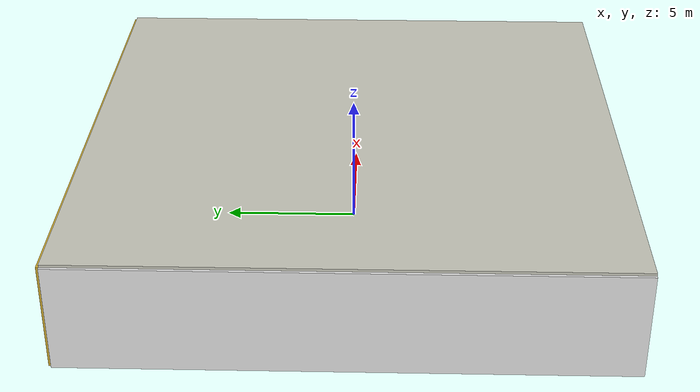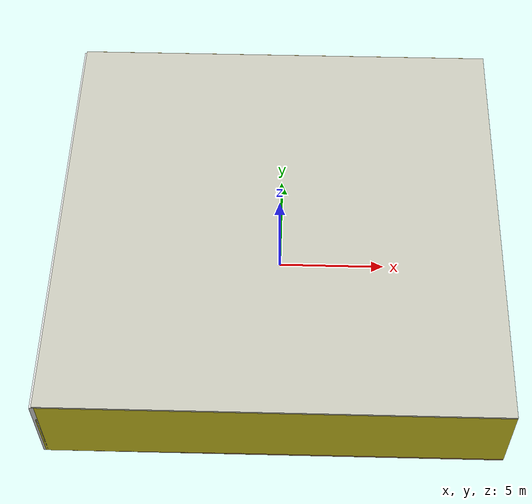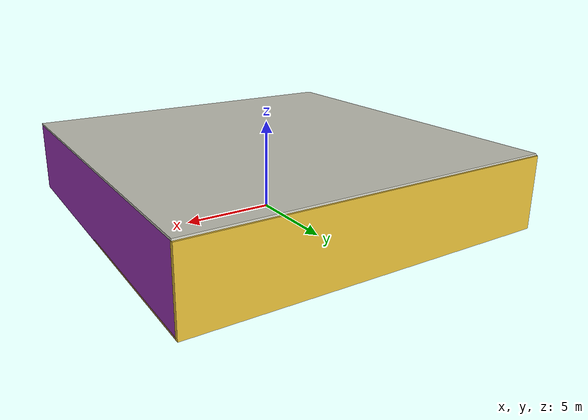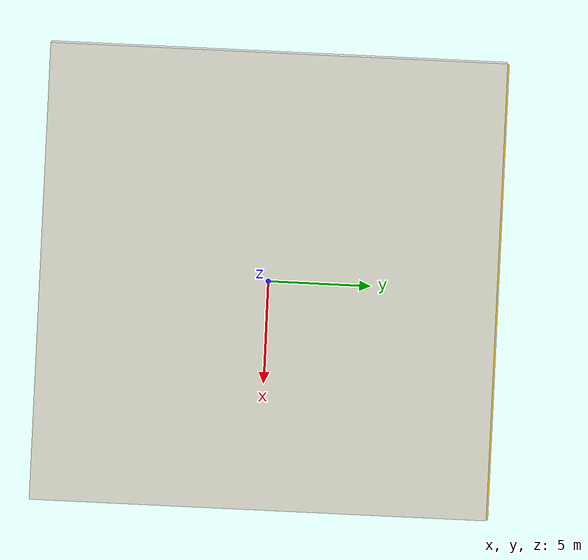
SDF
<sdf version="1.4">
 <world name="default">
  <physics type="ode">
   <max_step_size>0.001</max_step_size>
   <real_time_factor>1</real_time_factor>
   <real_time_update_rate>1000</real_time_update_rate>
   <gravity>0 0 -9.8</gravity>
  </physics>
  <scene><ambient>0.4 0.4 0.4 1</ambient><background>0.7 0.7 0.7 1</background><shadows>1</shadows></scene>
  <model name="Surrounding">
   <static>1</static>
   <link name="Ceiling">
    <collision name="Ceiling_Collision"><geometry><box><size>20 20 0.1</size></box></geometry></collision>
    <visual name="Ceiling_Visual">
     <geometry><box><size>20 20 0.1</size></box></geometry>
     <material>
      <script><uri>file://media/materials/scripts/gazebo.material</uri><name>Gazebo/PaintedWall</name></script>
     </material>
    </visual>
    <pose>0 0 4.05 0 0 0</pose>
   </link>
   <link name="Wall_South">
    <collision name="Wall_South_Collision">
     <geometry><box><size>20 0 4</size></box></geometry>
     <pose>0 0 2 0 -0 0</pose>
    </collision>
    <visual name="Wall_South_Visual">
     <pose>0 0 2 0 -0 0</pose>
     <geometry><box><size>20 0 4</size></box></geometry>
     <material>
      <script><uri>file://media/materials/scripts/gazebo.material</uri><name>Gazebo/Yellow</name></script>
     </material>
    </visual>
    <velocity_decay><linear>0</linear><angular>0</angular></velocity_decay>
    <pose>0 -10 0 0 -0 0</pose>
   </link>
   <link name="Wall_East">
    <collision name="Wall_21_Collision">
     <geometry><box><size>20 0 4</size></box></geometry>
     <pose>0 0 2 0 -0 0</pose>
    </collision>
    <visual name="Wall_21_Visual">
     <pose>0 0 2 0 -0 0</pose>
     <geometry><box><size>20 0 4</size></box></geometry>
     <material>
      <script><uri>file://media/materials/scripts/gazebo.material</uri><name>Gazebo/PurpleGlow</name></script>
     </material>
    </visual>
    <velocity_decay><linear>0</linear><angular>0</angular></velocity_decay>
    <pose>10 0 0 0 -0 1.5708</pose>
   </link>
   <link name="Wall_North">
    <collision name="Wall_22_Collision">
     <geometry><box><size>20 0.2 4</size></box></geometry>
     <pose>0 0 2 0 -0 0</pose>
    </collision>
    <visual name="Wall_22_Visual">
     <pose>0 0 2 0 -0 0</pose>
     <geometry><box><size>20 0.2 4</size></box></geometry>
     <material>
      <script><uri>file://media/materials/scripts/gazebo.material</uri><name>Gazebo/Gold</name></script>
     </material>
    </visual>
    <velocity_decay><linear>0</linear><angular>0</angular></velocity_decay>
    <pose>0 10 0 0 -0 0</pose>
   </link>
   <link name="Wall_West">
    <collision name="Wall_23_Collision">
     <geometry><box><size>20 0.2 4</size></box></geometry>
     <pose>0 0 2 0 -0 0</pose>
    </collision>
    <visual name="Wall_23_Visual">
     <pose>0 0 2 0 -0 0</pose>
     <geometry><box><size>20 0.2 4</size></box></geometry>
     <material>
      <script><uri>file://media/materials/scripts/gazebo.material</uri><name>Gazebo/White</name></script>
     </material>
    </visual>
    <velocity_decay><linear>0</linear><angular>0</angular></velocity_decay>
    <pose>-10 0 0 0 0 -1.5708</pose>
   </link>
   <link name="Ground_link">
    <collision name="collision">
     <pose>0 0 .05 0 -0 0</pose>
     <geometry><box><size>20 20 0.1</size></box></geometry>
    </collision>
    <visual name="visual">
     <pose>0 0 .05 0 -0 0</pose>
     <geometry><box><size>20 20 0.1</size></box></geometry>
     <material>
      <script><uri>file://media/materials/scripts/gazebo.material</uri><name>Gazebo/WoodFloor</name></script>
     </material>
    </visual>
   </link>
   <static>1</static>
  </model>
  <spherical_coordinates>
   <surface_model>EARTH_WGS84</surface_model>
   <latitude_deg>0</latitude_deg>
   <longitude_deg>0</longitude_deg>
   <elevation>0</elevation>
   <heading_deg>0</heading_deg>
  </spherical_coordinates>
  <light name="lightball_0" type="diffuse">
   <diffuse>0.8 0.8 0.8 1</diffuse>
   <specular>0.2 0.2 0.2 1</specular>
   <attenuation>
    <range>100</range>
    <constant>0.7</constant>
    <linear>0.01</linear>
    <quadratic>0.001</quadratic>
   </attenuation>
   <direction>-0.5 0.1 -0.9</direction>
   <pose>4.35291581249 5.65513188559 1.51419969631 0 0 0</pose>
  </light>
  <light name="lightball_1" type="diffuse">
   <diffuse>0.8 0.8 0.8 1</diffuse>
   <specular>0.2 0.2 0.2 1</specular>
   <attenuation>
    <range>100</range>
    <constant>0.7</constant>
    <linear>0.01</linear>
    <quadratic>0.001</quadratic>
   </attenuation>
   <direction>-0.5 0.1 -0.9</direction>
   <pose>0.0954853474294 2.03860953192 3.86647842137 0 0 0</pose>
  </light>
  <light name="lightball_2" type="diffuse">
   <diffuse>0.8 0.8 0.8 1</diffuse>
   <specular>0.2 0.2 0.2 1</specular>
   <attenuation>
    <range>100</range>
    <constant>0.7</constant>
    <linear>0.01</linear>
    <quadratic>0.001</quadratic>
   </attenuation>
   <direction>-0.5 0.1 -0.9</direction>
   <pose>6.44802761137 8.62744025514 0.919971448586 0 0 0</pose>
  </light>
  <include>
   <uri>model://textured_shapes</uri>
   <pose>-4.59498349672 4.95068110521 0 0 0 2.04049907326</pose>
  </include>
  <include><uri>model://cabinet</uri><pose>-0.600235239697 4.91891464816 0 0 0 2.70280004542</pose></include>
  <include>
   <uri>model://construction_cone</uri>
   <pose>2.2752841884 -8.31288373762 0 0 0 2.5333358489</pose>
  </include>
  <include>
   <uri>model://construction_cone</uri>
   <pose>3.52757642706 4.52553379588 0 0 0 0.922082582293</pose>
  </include>
 </world>
</sdf>

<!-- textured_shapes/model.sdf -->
<sdf version="1.6">
  <model name="textured_shapes">
    <pose>0 0 0.5 0 0 0</pose>
    <link name="box">
      <pose>0 -1.5 0 0 0 0</pose>
      <collision name="collision">
        <geometry>
          <box>
            <size>1 1 1</size>
          </box>
        </geometry>
      </collision>
      <visual name="visual">
        <geometry>
          <box>
            <size>1 1 1</size>
          </box>
        </geometry>
        <material>
          <script>
            <uri>model://../model_source/models/textured_shapes/materials/scripts</uri>
            <uri>model://../model_source/models/textured_shapes/materials/textures</uri>
            <name>TexturedShape/Squares</name>
          </script>
        </material>
      </visual>
    </link>
    <link name="sphere">
      <collision name="collision">
        <geometry>
          <sphere>
            <radius>0.5</radius>
          </sphere>
        </geometry>
      </collision>
      <visual name="visual">
        <geometry>
          <sphere>
            <radius>0.5</radius>
          </sphere>
        </geometry>
        <material>
          <script>
            <uri>model://../model_source/models/textured_shapes/materials/scripts</uri>
            <uri>model://../model_source/models/textured_shapes/materials/textures</uri>
            <name>TexturedShape/Squares</name>
          </script>
        </material>
      </visual>
    </link>
    <link name="cylinder">
      <pose>0 1.5 0 0 0 0</pose>
      <collision name="collision">
        <geometry>
          <cylinder>
            <radius>0.5</radius>
            <length>1</length>
          </cylinder>
        </geometry>
      </collision>
      <visual name="visual">
        <geometry>
          <cylinder>
            <radius>0.5</radius>
            <length>1</length>
          </cylinder>
        </geometry>
        <material>
          <script>
            <uri>model://../model_source/models/textured_shapes/materials/scripts</uri>
            <uri>model://../model_source/models/textured_shapes/materials/textures</uri>
            <name>TexturedShape/Squares</name>
          </script>
        </material>
      </visual>
    </link>
  </model>
</sdf>

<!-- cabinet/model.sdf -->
<sdf version="1.5">
  <model name="cabinet">
    <static>true</static>
    <link name="cabinet_bottom_plate">
      <inertial>
        <pose>0 0 -1 0 0 0</pose>
        <inertia>
          <ixx>2.050000</ixx>
          <ixy>0</ixy>
          <ixz>0</ixz>
          <iyy>2.050000</iyy>
          <iyz>0</iyz>
          <izz>2.050000</izz>
        </inertia>
        <mass>25.000000</mass>
      </inertial>
      <collision name="cabinet_bottom_plate_geom">
        <pose>0 0 0.010000 0 0 0</pose>
        <geometry>
          <box>
            <size>0.450000 0.450000 0.020000</size>
          </box>
        </geometry>
      </collision>
      <visual name="cabinet_bottom_plate_geom_visual">
        <pose>0 0 0.010000 0 0 0</pose>
        <geometry>
          <box>
            <size>0.450000 0.450000 0.020000</size>
          </box>
        </geometry>
        <material>
          <script>
            <uri>model://media/materials/scripts/gazebo.material</uri>
            <name>Gazebo/Wood</name>
          </script>
        </material>
      </visual>
      <collision name="cabinet_bottom_plate_geom_cabinet_back_plate">
        <pose>0.235000 0 0.510000 0 0 0</pose>
        <geometry>
          <box>
            <size>0.020000 0.450000 1.020000</size>
          </box>
        </geometry>
      </collision>
      <visual name="cabinet_bottom_plate_geom_cabinet_back_plate_visual">
        <pose>0.235000 0 0.510000 0 0 0</pose>
        <geometry>
          <box>
            <size>0.020000 0.450000 1.020000</size>
          </box>
        </geometry>
        <material>
          <script>
            <uri>model://media/materials/scripts/gazebo.material</uri>
            <name>Gazebo/Wood</name>
          </script>
        </material>
      </visual>
      <collision name="cabinet_bottom_plate_geom_cabinet_left_plate">
        <pose>0 0.235000 0.510000 0 0 0</pose>
        <geometry>
          <box>
            <size>0.450000 0.020000 1.020000</size>
          </box>
        </geometry>
      </collision>
      <visual name="cabinet_bottom_plate_geom_cabinet_left_plate_visual">
        <pose>0 0.235000 0.510000 0 0 0</pose>
        <geometry>
          <box>
            <size>0.450000 0.020000 1.020000</size>
          </box>
        </geometry>
        <material>
          <script>
            <uri>model://media/materials/scripts/gazebo.material</uri>
            <name>Gazebo/Wood</name>
          </script>
        </material>
      </visual>
      <collision name="cabinet_bottom_plate_geom_cabinet_middle_plate">
        <pose>0 0 0.510000 0 0 0</pose>
        <geometry>
          <box>
            <size>0.450000 0.450000 0.020000</size>
          </box>
        </geometry>
      </collision>
      <visual name="cabinet_bottom_plate_geom_cabinet_middle_plate_visual">
        <pose>0 0 0.510000 0 0 0</pose>
        <geometry>
          <box>
            <size>0.450000 0.450000 0.020000</size>
          </box>
        </geometry>
        <material>
          <script>
            <uri>model://media/materials/scripts/gazebo.material</uri>
            <name>Gazebo/Wood</name>
          </script>
        </material>
      </visual>
      <collision name="cabinet_bottom_plate_geom_cabinet_right_plate">
        <pose>0 -0.235000 0.510000 0 0 0</pose>
        <geometry>
          <box>
            <size>0.450000 0.020000 1.020000</size>
          </box>
        </geometry>
      </collision>
      <visual name="cabinet_bottom_plate_geom_cabinet_right_plate_visual">
        <pose>0 -0.235000 0.510000 0 0 0</pose>
        <geometry>
          <box>
            <size>0.450000 0.020000 1.020000</size>
          </box>
        </geometry>
        <material>
          <script>
            <uri>model://media/materials/scripts/gazebo.material</uri>
            <name>Gazebo/Wood</name>
          </script>
        </material>
      </visual>
      <collision name="cabinet_bottom_plate_geom_cabinet_top_plate">
        <pose>0 0 1.010000 0 0 0</pose>
        <geometry>
          <box>
            <size>0.450000 0.450000 0.020000</size>
          </box>
        </geometry>
      </collision>
      <visual name="cabinet_bottom_plate_geom_cabinet_top_plate_visual">
        <pose>0 0 1.010000 0 0 0</pose>
        <geometry>
          <box>
            <size>0.450000 0.450000 0.020000</size>
          </box>
        </geometry>
        <material>
          <script>
            <uri>model://media/materials/scripts/gazebo.material</uri>
            <name>Gazebo/Wood</name>
          </script>
        </material>
      </visual>
    </link>
  </model>
</sdf>

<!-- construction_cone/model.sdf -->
<sdf version="1.5">
  <model name="Construction Cone">
    <link name="link">
      <collision name="collision">
        <geometry>
          <mesh>
            <scale>10 10 10</scale>
            <uri>file://isr-testbed/construction_cone/meshes/construction_cone.dae</uri>
          </mesh>
        </geometry>
      </collision>
      <visual name="visual">
        <geometry>
          <mesh>
            <scale>10 10 10</scale>
            <uri>file://isr-testbed/construction_cone/meshes/construction_cone.dae</uri>
          </mesh>
        </geometry>
      </visual>
    </link>
  </model>
</sdf>
